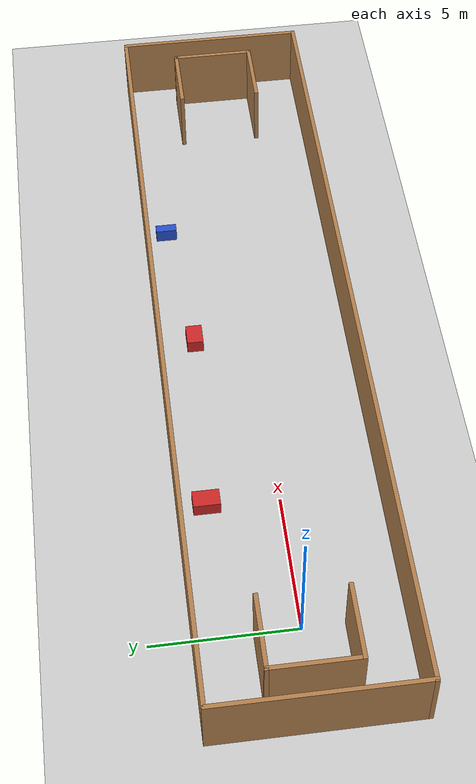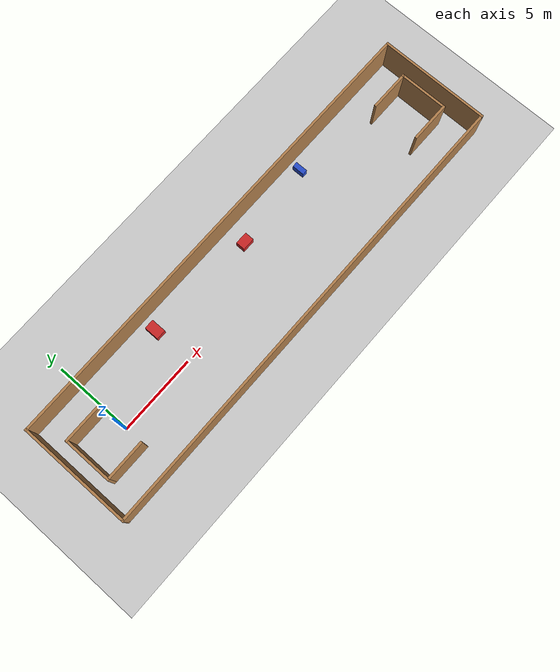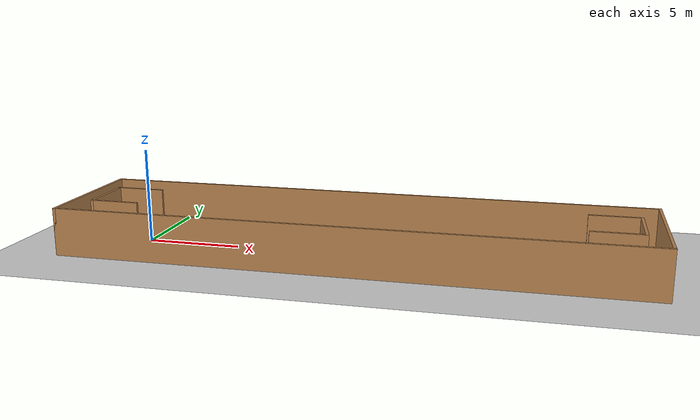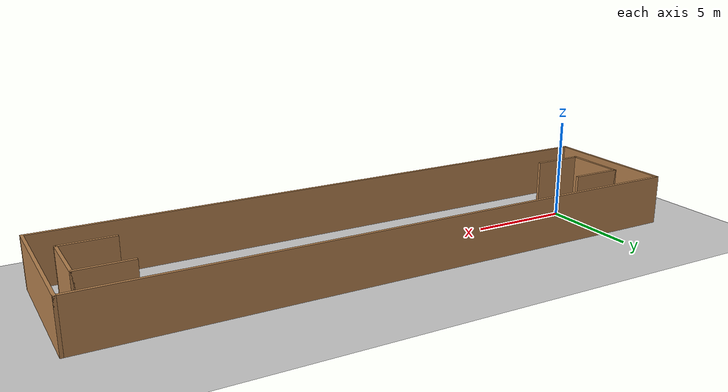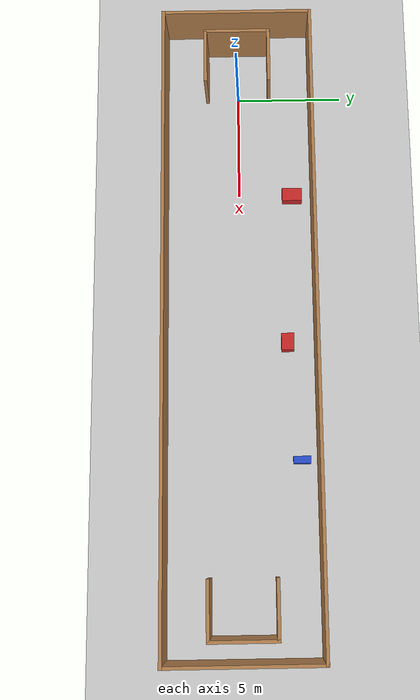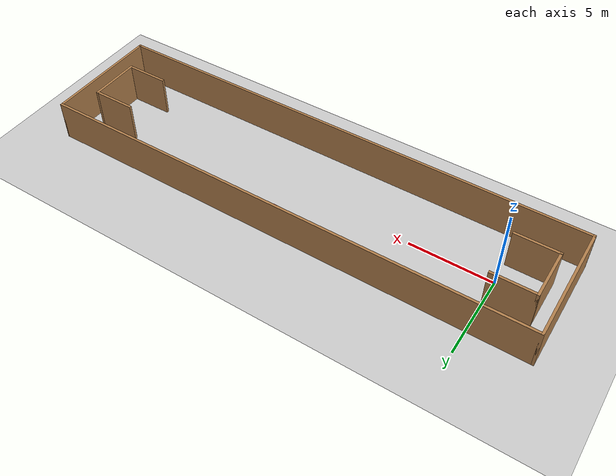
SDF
<sdf version="1.7">
 <world name="default">
  <light name="sun" type="directional">
   <pose>0 0 10 0 -0 0</pose>
   <diffuse>0.8 0.8 0.8 1</diffuse>
   <specular>0.2 0.2 0.2 1</specular>
   <attenuation>
    <range>1000</range>
    <constant>0.9</constant>
    <linear>0.01</linear>
    <quadratic>0.001</quadratic>
   </attenuation>
   <direction>-0.5 0.1 -0.9</direction>
   <spot><inner_angle>0</inner_angle><outer_angle>0</outer_angle><falloff>0</falloff></spot>
  </light>
  <model name="ground_plane">
   <static>1</static>
   <link name="link">
    <collision name="collision">
     <geometry><plane><normal>0 0 1</normal><size>100 100</size></plane></geometry>
     <surface>
      <contact><collide_bitmask>65535</collide_bitmask></contact>
      <friction><ode><mu>100</mu><mu2>50</mu2></ode></friction>
     </surface>
    </collision>
    <visual name="visual">
     <cast_shadows>0</cast_shadows>
     <geometry><plane><normal>0 0 1</normal><size>100 100</size></plane></geometry>
     <material>
      <script><uri>file://media/materials/scripts/gazebo.material</uri><name>Gazebo/Grey</name></script>
     </material>
    </visual>
   </link>
  </model>
  <gravity>0 0 -9.8</gravity>
  <magnetic_field>6e-06 2.3e-05 -4.2e-05</magnetic_field>
  <atmosphere type="adiabatic"/>
  <physics type="ode">
   <max_step_size>0.001</max_step_size>
   <real_time_factor>1</real_time_factor>
   <real_time_update_rate>1000</real_time_update_rate>
  </physics>
  <scene><ambient>0.4 0.4 0.4 1</ambient><background>0.7 0.7 0.7 1</background><shadows>1</shadows></scene>
  <spherical_coordinates>
   <surface_model>EARTH_WGS84</surface_model>
   <latitude_deg>0</latitude_deg>
   <longitude_deg>0</longitude_deg>
   <elevation>0</elevation>
   <heading_deg>0</heading_deg>
  </spherical_coordinates>
  <model name="my_base_walls">
   <link name="Wall_0">
    <collision name="Wall_0_Collision">
     <geometry><box><size>7.15 0.15 2.5</size></box></geometry>
     <pose>0 0 1.25 0 -0 0</pose>
    </collision>
    <visual name="Wall_0_Visual">
     <pose>0 0 1.25 0 -0 0</pose>
     <geometry><box><size>7.15 0.15 2.5</size></box></geometry>
     <material>
      <script><uri>file://media/materials/scripts/gazebo.material</uri><name>Gazebo/Wood</name></script>
      <ambient>1 1 1 1</ambient>
     </material>
     <meta><layer>0</layer></meta>
    </visual>
    <pose>-15 0 0 0 -0 1.5708</pose>
   </link>
   <link name="Wall_10">
    <collision name="Wall_10_Collision">
     <geometry><box><size>2.65 0.15 2.5</size></box></geometry>
     <pose>0 0 1.25 0 -0 0</pose>
    </collision>
    <visual name="Wall_10_Visual">
     <pose>0 0 1.25 0 -0 0</pose>
     <geometry><box><size>2.65 0.15 2.5</size></box></geometry>
     <material>
      <script><uri>file://media/materials/scripts/gazebo.material</uri><name>Gazebo/Wood</name></script>
      <ambient>1 1 1 1</ambient>
     </material>
     <meta><layer>0</layer></meta>
    </visual>
    <pose>-12.75 -1.5 0 0 -0 0</pose>
   </link>
   <link name="Wall_12">
    <collision name="Wall_12_Collision">
     <geometry><box><size>2.65 0.15 2.5</size></box></geometry>
     <pose>0 0 1.25 0 -0 0</pose>
    </collision>
    <visual name="Wall_12_Visual">
     <pose>0 0 1.25 0 -0 0</pose>
     <geometry><box><size>2.65 0.15 2.5</size></box></geometry>
     <material>
      <script><uri>file://media/materials/scripts/gazebo.material</uri><name>Gazebo/Wood</name></script>
      <ambient>1 1 1 1</ambient>
     </material>
     <meta><layer>0</layer></meta>
    </visual>
    <pose>-12.75 1.5 0 0 -0 0</pose>
   </link>
   <link name="Wall_14">
    <collision name="Wall_14_Collision">
     <geometry><box><size>3.15 0.15 2.5</size></box></geometry>
     <pose>0 0 1.25 0 -0 0</pose>
    </collision>
    <visual name="Wall_14_Visual">
     <pose>0 0 1.25 0 -0 0</pose>
     <geometry><box><size>3.15 0.15 2.5</size></box></geometry>
     <material>
      <script><uri>file://media/materials/scripts/gazebo.material</uri><name>Gazebo/Wood</name></script>
      <ambient>1 1 1 1</ambient>
     </material>
     <meta><layer>0</layer></meta>
    </visual>
    <pose>14 0 0 0 -0 -1.5708</pose>
   </link>
   <link name="Wall_15">
    <collision name="Wall_15_Collision">
     <geometry><box><size>2.65 0.15 2.5</size></box></geometry>
     <pose>0 0 1.25 0 -0 0</pose>
    </collision>
    <visual name="Wall_15_Visual">
     <pose>0 0 1.25 0 -0 0</pose>
     <geometry><box><size>2.65 0.15 2.5</size></box></geometry>
     <material>
      <script><uri>file://media/materials/scripts/gazebo.material</uri><name>Gazebo/Wood</name></script>
      <ambient>1 1 1 1</ambient>
     </material>
     <meta><layer>0</layer></meta>
    </visual>
    <pose>12.75 -1.5 0 0 -0 3.14159</pose>
   </link>
   <link name="Wall_17">
    <collision name="Wall_17_Collision">
     <geometry><box><size>2.65 0.15 2.5</size></box></geometry>
     <pose>0 0 1.25 0 -0 0</pose>
    </collision>
    <visual name="Wall_17_Visual">
     <pose>0 0 1.25 0 -0 0</pose>
     <geometry><box><size>2.65 0.15 2.5</size></box></geometry>
     <material>
      <script><uri>file://media/materials/scripts/gazebo.material</uri><name>Gazebo/Wood</name></script>
      <ambient>1 1 1 1</ambient>
     </material>
     <meta><layer>0</layer></meta>
    </visual>
    <pose>12.75 1.5 0 0 -0 3.14159</pose>
   </link>
   <link name="Wall_2">
    <collision name="Wall_2_Collision">
     <geometry><box><size>30.15 0.15 2.5</size></box></geometry>
     <pose>0 0 1.25 0 -0 0</pose>
    </collision>
    <visual name="Wall_2_Visual">
     <pose>0 0 1.25 0 -0 0</pose>
     <geometry><box><size>30.15 0.15 2.5</size></box></geometry>
     <material>
      <script><uri>file://media/materials/scripts/gazebo.material</uri><name>Gazebo/Wood</name></script>
      <ambient>1 1 1 1</ambient>
     </material>
     <meta><layer>0</layer></meta>
    </visual>
    <pose>-0 -3.5 0 0 -0 0</pose>
   </link>
   <link name="Wall_4">
    <collision name="Wall_4_Collision">
     <geometry><box><size>30.15 0.15 2.5</size></box></geometry>
     <pose>0 0 1.25 0 -0 0</pose>
    </collision>
    <visual name="Wall_4_Visual">
     <pose>0 0 1.25 0 -0 0</pose>
     <geometry><box><size>30.15 0.15 2.5</size></box></geometry>
     <material>
      <script><uri>file://media/materials/scripts/gazebo.material</uri><name>Gazebo/Wood</name></script>
      <ambient>1 1 1 1</ambient>
     </material>
     <meta><layer>0</layer></meta>
    </visual>
    <pose>-0 3.5 0 0 -0 0</pose>
   </link>
   <link name="Wall_6">
    <collision name="Wall_6_Collision">
     <geometry><box><size>7.15 0.15 2.5</size></box></geometry>
     <pose>0 0 1.25 0 -0 0</pose>
    </collision>
    <visual name="Wall_6_Visual">
     <pose>0 0 1.25 0 -0 0</pose>
     <geometry><box><size>7.15 0.15 2.5</size></box></geometry>
     <material>
      <script><uri>file://media/materials/scripts/gazebo.material</uri><name>Gazebo/Wood</name></script>
      <ambient>1 1 1 1</ambient>
     </material>
     <meta><layer>0</layer></meta>
    </visual>
    <pose>15 0 0 0 -0 -1.5708</pose>
   </link>
   <link name="Wall_9">
    <collision name="Wall_9_Collision">
     <geometry><box><size>3.15 0.15 2.5</size></box></geometry>
     <pose>0 0 1.25 0 -0 0</pose>
    </collision>
    <visual name="Wall_9_Visual">
     <pose>0 0 1.25 0 -0 0</pose>
     <geometry><box><size>3.15 0.15 2.5</size></box></geometry>
     <material>
      <script><uri>file://media/materials/scripts/gazebo.material</uri><name>Gazebo/Wood</name></script>
      <ambient>1 1 1 1</ambient>
     </material>
     <meta><layer>0</layer></meta>
    </visual>
    <pose>-14 0 0 0 -0 -1.5708</pose>
   </link>
   <static>1</static>
   <pose>11.5 0 0 0 -0 0</pose>
  </model>
  <model name="moving_box_1">
   <pose>12.303765530143863 2.182818525904983 0 0 0 0</pose>
   <link name="link">
    <collision name="collision">
     <geometry><box><size>0.8011026093751905 0.5916269904874305 1</size></box></geometry>
     <surface><friction><ode><mu>0.1</mu><mu2>0.1</mu2></ode></friction></surface>
    </collision>
    <visual name="visual">
     <geometry><box><size>0.8011026093751905 0.5916269904874305 1</size></box></geometry>
     <material>
      <script><uri>file://media/materials/scripts/gazebo.material</uri><name>Gazebo/Red</name></script>
     </material>
    </visual>
   </link>
   <plugin name="move_box_plugin_1" filename="/home/otonom/fgm_ws/devel/lib/libmove_box_plugin.so">
    <velocity>-0.1159032907239363 -0.21871864932808502 0</velocity>
   </plugin>
  </model>
  <model name="moving_box_2">
   <pose>5.084195349645526 2.5328889087511586 0 0 0 0</pose>
   <link name="link">
    <collision name="collision">
     <geometry><box><size>0.6216852984951505 0.9402783883382659 1</size></box></geometry>
     <surface><friction><ode><mu>0.1</mu><mu2>0.1</mu2></ode></friction></surface>
    </collision>
    <visual name="visual">
     <geometry><box><size>0.6216852984951505 0.9402783883382659 1</size></box></geometry>
     <material>
      <script><uri>file://media/materials/scripts/gazebo.material</uri><name>Gazebo/Red</name></script>
     </material>
    </visual>
   </link>
   <plugin name="move_box_plugin_2" filename="/home/otonom/fgm_ws/devel/lib/libmove_box_plugin.so">
    <velocity>0.0810450731434233 -0.15343089628104226 0</velocity>
   </plugin>
  </model>
  <model name="moving_box_3">
   <pose>17.790247180035458 2.7231480522805223 0 0 0 0</pose>
   <link name="link">
    <collision name="collision">
     <geometry><box><size>0.3323436980447953 0.7866519607827862 1</size></box></geometry>
     <surface><friction><ode><mu>0.1</mu><mu2>0.1</mu2></ode></friction></surface>
    </collision>
    <visual name="visual">
     <geometry><box><size>0.3323436980447953 0.7866519607827862 1</size></box></geometry>
     <material>
      <script><uri>file://media/materials/scripts/gazebo.material</uri><name>Gazebo/Blue</name></script>
     </material>
    </visual>
   </link>
   <plugin name="move_box_plugin_3" filename="/home/otonom/fgm_ws/devel/lib/libmove_box_plugin.so">
    <velocity>0 0 0</velocity>
   </plugin>
  </model>
 </world>
</sdf>
